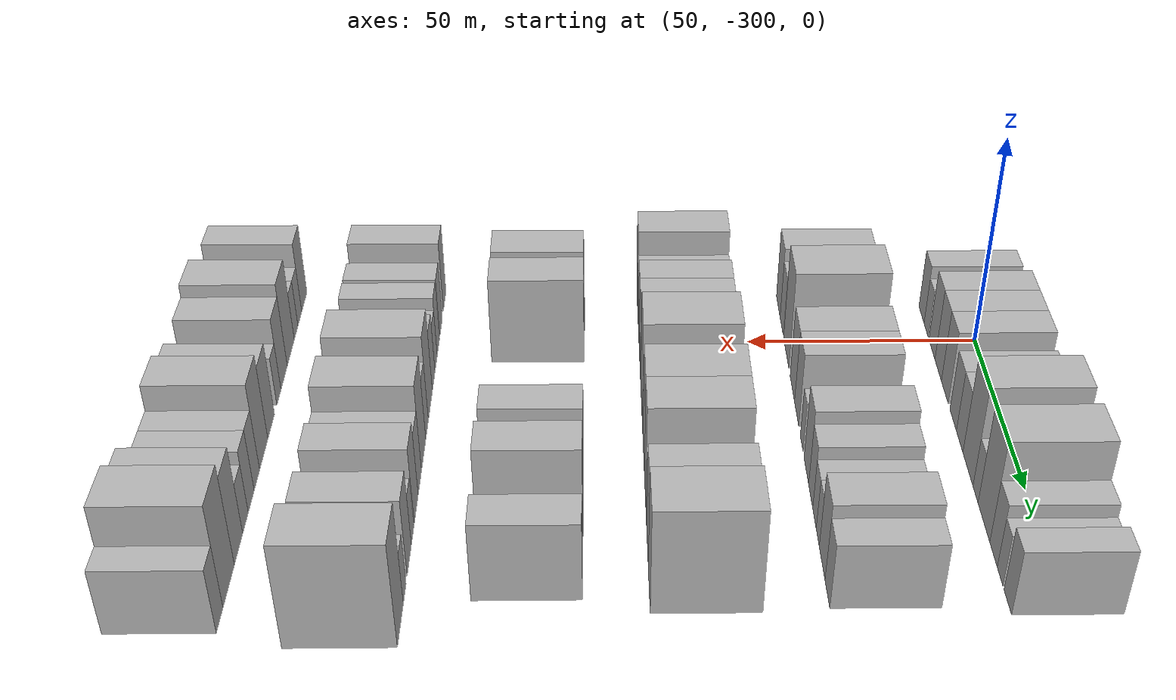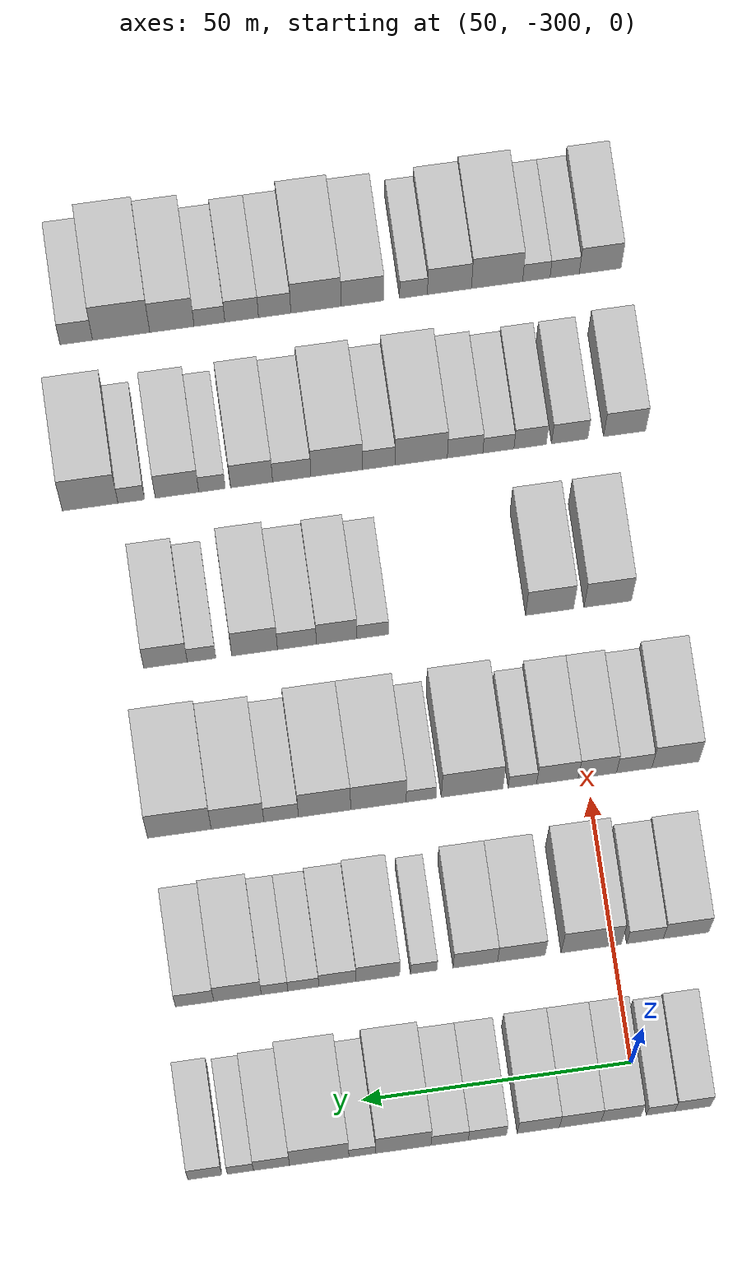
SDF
<sdf version="1.6">
 <world name="default">
  <model name="building_23">
   <static>1</static>
   <pose>50.0000 -310.0398 0 0.000000 0.000000 0.000000</pose>
   <link name="link">
    <pose>0 0 7.50 0 0 0</pose>
    <collision name="collision"><geometry><box><size>20.0000 6.6464 15.0000</size></box></geometry></collision>
    <visual name="visual">
     <cast_shadows>0</cast_shadows>
     <geometry><box><size>20.0000 6.6464 15.0000</size></box></geometry>
     <material>
      <script>
       <uri>model://HANNAS_wall/materials/scripts</uri>
       <uri>model://HANNAS_wall/materials/textures</uri>
       <name>vrc/HANNAS_wall</name>
      </script>
     </material>
    </visual>
   </link>
  </model>
  <model name="building_24">
   <static>1</static>
   <pose>50.0000 -304.0617 0 0.000000 0.000000 0.000000</pose>
   <link name="link">
    <pose>0 0 6.00 0 0 0</pose>
    <collision name="collision"><geometry><box><size>20.0000 5.3097 12.0000</size></box></geometry></collision>
    <visual name="visual">
     <cast_shadows>0</cast_shadows>
     <geometry><box><size>20.0000 5.3097 12.0000</size></box></geometry>
     <material>
      <script>
       <uri>model://HANNAS_wall/materials/scripts</uri>
       <uri>model://HANNAS_wall/materials/textures</uri>
       <name>vrc/HANNAS_wall</name>
      </script>
     </material>
    </visual>
   </link>
  </model>
  <model name="building_25">
   <static>1</static>
   <pose>50.0000 -296.6965 0 0.000000 0.000000 0.000000</pose>
   <link name="link">
    <pose>0 0 9.00 0 0 0</pose>
    <collision name="collision"><geometry><box><size>20.0000 7.4208 18.0000</size></box></geometry></collision>
    <visual name="visual">
     <cast_shadows>0</cast_shadows>
     <geometry><box><size>20.0000 7.4208 18.0000</size></box></geometry>
     <material>
      <script>
       <uri>model://HANNAS_wall/materials/scripts</uri>
       <uri>model://HANNAS_wall/materials/textures</uri>
       <name>vrc/HANNAS_wall</name>
      </script>
     </material>
    </visual>
   </link>
  </model>
  <model name="building_26">
   <static>1</static>
   <pose>50.0000 -289.1113 0 0.000000 0.000000 0.000000</pose>
   <link name="link">
    <pose>0 0 9.00 0 0 0</pose>
    <collision name="collision"><geometry><box><size>20.0000 7.7495 18.0000</size></box></geometry></collision>
    <visual name="visual">
     <cast_shadows>0</cast_shadows>
     <geometry><box><size>20.0000 7.7495 18.0000</size></box></geometry>
     <material>
      <script>
       <uri>model://HANNAS_wall/materials/scripts</uri>
       <uri>model://HANNAS_wall/materials/textures</uri>
       <name>vrc/HANNAS_wall</name>
      </script>
     </material>
    </visual>
   </link>
  </model>
  <model name="building_27">
   <static>1</static>
   <pose>50.0000 -281.3216 0 0.000000 0.000000 0.000000</pose>
   <link name="link">
    <pose>0 0 9.00 0 0 0</pose>
    <collision name="collision"><geometry><box><size>20.0000 7.8299 18.0000</size></box></geometry></collision>
    <visual name="visual">
     <cast_shadows>0</cast_shadows>
     <geometry><box><size>20.0000 7.8299 18.0000</size></box></geometry>
     <material>
      <script>
       <uri>model://HANNAS_wall/materials/scripts</uri>
       <uri>model://HANNAS_wall/materials/textures</uri>
       <name>vrc/HANNAS_wall</name>
      </script>
     </material>
    </visual>
   </link>
  </model>
  <model name="building_28">
   <static>1</static>
   <pose>50.0000 -271.8612 0 0.000000 0.000000 0.000000</pose>
   <link name="link">
    <pose>0 0 7.50 0 0 0</pose>
    <collision name="collision"><geometry><box><size>20.0000 7.0910 15.0000</size></box></geometry></collision>
    <visual name="visual">
     <cast_shadows>0</cast_shadows>
     <geometry><box><size>20.0000 7.0910 15.0000</size></box></geometry>
     <material>
      <script>
       <uri>model://HANNAS_wall/materials/scripts</uri>
       <uri>model://HANNAS_wall/materials/textures</uri>
       <name>vrc/HANNAS_wall</name>
      </script>
     </material>
    </visual>
   </link>
  </model>
  <model name="building_29">
   <static>1</static>
   <pose>50.0000 -264.8515 0 0.000000 0.000000 0.000000</pose>
   <link name="link">
    <pose>0 0 7.50 0 0 0</pose>
    <collision name="collision"><geometry><box><size>20.0000 6.9283 15.0000</size></box></geometry></collision>
    <visual name="visual">
     <cast_shadows>0</cast_shadows>
     <geometry><box><size>20.0000 6.9283 15.0000</size></box></geometry>
     <material>
      <script>
       <uri>model://HANNAS_wall/materials/scripts</uri>
       <uri>model://HANNAS_wall/materials/textures</uri>
       <name>vrc/HANNAS_wall</name>
      </script>
     </material>
    </visual>
   </link>
  </model>
  <model name="building_30">
   <static>1</static>
   <pose>50.0000 -256.2500 0 0.000000 0.000000 0.000000</pose>
   <link name="link">
    <pose>0 0 12.00 0 0 0</pose>
    <collision name="collision"><geometry><box><size>20.0000 10.2747 24.0000</size></box></geometry></collision>
    <visual name="visual">
     <cast_shadows>0</cast_shadows>
     <geometry><box><size>20.0000 10.2747 24.0000</size></box></geometry>
     <material>
      <script>
       <uri>model://HANNAS_wall/materials/scripts</uri>
       <uri>model://HANNAS_wall/materials/textures</uri>
       <name>vrc/HANNAS_wall</name>
      </script>
     </material>
    </visual>
   </link>
  </model>
  <model name="building_31">
   <static>1</static>
   <pose>50.0000 -248.6402 0 0.000000 0.000000 0.000000</pose>
   <link name="link">
    <pose>0 0 6.00 0 0 0</pose>
    <collision name="collision"><geometry><box><size>20.0000 4.9449 12.0000</size></box></geometry></collision>
    <visual name="visual">
     <cast_shadows>0</cast_shadows>
     <geometry><box><size>20.0000 4.9449 12.0000</size></box></geometry>
     <material>
      <script>
       <uri>model://HANNAS_wall/materials/scripts</uri>
       <uri>model://HANNAS_wall/materials/textures</uri>
       <name>vrc/HANNAS_wall</name>
      </script>
     </material>
    </visual>
   </link>
  </model>
  <model name="building_32">
   <static>1</static>
   <pose>50.0000 -240.6708 0 0.000000 0.000000 0.000000</pose>
   <link name="link">
    <pose>0 0 12.00 0 0 0</pose>
    <collision name="collision"><geometry><box><size>20.0000 10.9939 24.0000</size></box></geometry></collision>
    <visual name="visual">
     <cast_shadows>0</cast_shadows>
     <geometry><box><size>20.0000 10.9939 24.0000</size></box></geometry>
     <material>
      <script>
       <uri>model://HANNAS_wall/materials/scripts</uri>
       <uri>model://HANNAS_wall/materials/textures</uri>
       <name>vrc/HANNAS_wall</name>
      </script>
     </material>
    </visual>
   </link>
  </model>
  <model name="building_33">
   <static>1</static>
   <pose>50.0000 -231.8314 0 0.000000 0.000000 0.000000</pose>
   <link name="link">
    <pose>0 0 7.50 0 0 0</pose>
    <collision name="collision"><geometry><box><size>20.0000 6.6849 15.0000</size></box></geometry></collision>
    <visual name="visual">
     <cast_shadows>0</cast_shadows>
     <geometry><box><size>20.0000 6.6849 15.0000</size></box></geometry>
     <material>
      <script>
       <uri>model://HANNAS_wall/materials/scripts</uri>
       <uri>model://HANNAS_wall/materials/textures</uri>
       <name>vrc/HANNAS_wall</name>
      </script>
     </material>
    </visual>
   </link>
  </model>
  <model name="building_34">
   <static>1</static>
   <pose>50.0000 -226.0718 0 0.000000 0.000000 0.000000</pose>
   <link name="link">
    <pose>0 0 6.00 0 0 0</pose>
    <collision name="collision"><geometry><box><size>20.0000 4.8343 12.0000</size></box></geometry></collision>
    <visual name="visual">
     <cast_shadows>0</cast_shadows>
     <geometry><box><size>20.0000 4.8343 12.0000</size></box></geometry>
     <material>
      <script>
       <uri>model://HANNAS_wall/materials/scripts</uri>
       <uri>model://HANNAS_wall/materials/textures</uri>
       <name>vrc/HANNAS_wall</name>
      </script>
     </material>
    </visual>
   </link>
  </model>
  <model name="building_35">
   <static>1</static>
   <pose>50.0000 -219.5047 0 0.000000 0.000000 0.000000</pose>
   <link name="link">
    <pose>0 0 7.50 0 0 0</pose>
    <collision name="collision"><geometry><box><size>20.0000 6.2999 15.0000</size></box></geometry></collision>
    <visual name="visual">
     <cast_shadows>0</cast_shadows>
     <geometry><box><size>20.0000 6.2999 15.0000</size></box></geometry>
     <material>
      <script>
       <uri>model://HANNAS_wall/materials/scripts</uri>
       <uri>model://HANNAS_wall/materials/textures</uri>
       <name>vrc/HANNAS_wall</name>
      </script>
     </material>
    </visual>
   </link>
  </model>
  <model name="building_153">
   <static>1</static>
   <pose>82.0000 -313.6675 0 0.000000 0.000000 0.000000</pose>
   <link name="link">
    <pose>0 0 9.00 0 0 0</pose>
    <collision name="collision"><geometry><box><size>20.0000 8.4877 18.0000</size></box></geometry></collision>
    <visual name="visual">
     <cast_shadows>0</cast_shadows>
     <geometry><box><size>20.0000 8.4877 18.0000</size></box></geometry>
     <material>
      <script>
       <uri>model://HANNAS_wall/materials/scripts</uri>
       <uri>model://HANNAS_wall/materials/textures</uri>
       <name>vrc/HANNAS_wall</name>
      </script>
     </material>
    </visual>
   </link>
  </model>
  <model name="building_154">
   <static>1</static>
   <pose>82.0000 -305.9820 0 0.000000 0.000000 0.000000</pose>
   <link name="link">
    <pose>0 0 7.50 0 0 0</pose>
    <collision name="collision"><geometry><box><size>20.0000 6.8834 15.0000</size></box></geometry></collision>
    <visual name="visual">
     <cast_shadows>0</cast_shadows>
     <geometry><box><size>20.0000 6.8834 15.0000</size></box></geometry>
     <material>
      <script>
       <uri>model://HANNAS_wall/materials/scripts</uri>
       <uri>model://HANNAS_wall/materials/textures</uri>
       <name>vrc/HANNAS_wall</name>
      </script>
     </material>
    </visual>
   </link>
  </model>
  <model name="building_155">
   <static>1</static>
   <pose>82.0000 -295.9151 0 0.000000 0.000000 0.000000</pose>
   <link name="link">
    <pose>0 0 12.00 0 0 0</pose>
    <collision name="collision"><geometry><box><size>20.0000 11.2505 24.0000</size></box></geometry></collision>
    <visual name="visual">
     <cast_shadows>0</cast_shadows>
     <geometry><box><size>20.0000 11.2505 24.0000</size></box></geometry>
     <material>
      <script>
       <uri>model://HANNAS_wall/materials/scripts</uri>
       <uri>model://HANNAS_wall/materials/textures</uri>
       <name>vrc/HANNAS_wall</name>
      </script>
     </material>
    </visual>
   </link>
  </model>
  <model name="building_156">
   <static>1</static>
   <pose>82.0000 -282.8417 0 0.000000 0.000000 0.000000</pose>
   <link name="link">
    <pose>0 0 9.00 0 0 0</pose>
    <collision name="collision"><geometry><box><size>20.0000 8.8963 18.0000</size></box></geometry></collision>
    <visual name="visual">
     <cast_shadows>0</cast_shadows>
     <geometry><box><size>20.0000 8.8963 18.0000</size></box></geometry>
     <material>
      <script>
       <uri>model://HANNAS_wall/materials/scripts</uri>
       <uri>model://HANNAS_wall/materials/textures</uri>
       <name>vrc/HANNAS_wall</name>
      </script>
     </material>
    </visual>
   </link>
  </model>
  <model name="building_157">
   <static>1</static>
   <pose>82.0000 -274.2463 0 0.000000 0.000000 0.000000</pose>
   <link name="link">
    <pose>0 0 9.00 0 0 0</pose>
    <collision name="collision"><geometry><box><size>20.0000 8.2944 18.0000</size></box></geometry></collision>
    <visual name="visual">
     <cast_shadows>0</cast_shadows>
     <geometry><box><size>20.0000 8.2944 18.0000</size></box></geometry>
     <material>
      <script>
       <uri>model://HANNAS_wall/materials/scripts</uri>
       <uri>model://HANNAS_wall/materials/textures</uri>
       <name>vrc/HANNAS_wall</name>
      </script>
     </material>
    </visual>
   </link>
  </model>
  <model name="building_158">
   <static>1</static>
   <pose>82.0000 -264.6137 0 0.000000 0.000000 0.000000</pose>
   <link name="link">
    <pose>0 0 6.00 0 0 0</pose>
    <collision name="collision"><geometry><box><size>20.0000 4.9708 12.0000</size></box></geometry></collision>
    <visual name="visual">
     <cast_shadows>0</cast_shadows>
     <geometry><box><size>20.0000 4.9708 12.0000</size></box></geometry>
     <material>
      <script>
       <uri>model://HANNAS_wall/materials/scripts</uri>
       <uri>model://HANNAS_wall/materials/textures</uri>
       <name>vrc/HANNAS_wall</name>
      </script>
     </material>
    </visual>
   </link>
  </model>
  <model name="building_159">
   <static>1</static>
   <pose>82.0000 -256.0670 0 0.000000 0.000000 0.000000</pose>
   <link name="link">
    <pose>0 0 9.00 0 0 0</pose>
    <collision name="collision"><geometry><box><size>20.0000 8.1225 18.0000</size></box></geometry></collision>
    <visual name="visual">
     <cast_shadows>0</cast_shadows>
     <geometry><box><size>20.0000 8.1225 18.0000</size></box></geometry>
     <material>
      <script>
       <uri>model://HANNAS_wall/materials/scripts</uri>
       <uri>model://HANNAS_wall/materials/textures</uri>
       <name>vrc/HANNAS_wall</name>
      </script>
     </material>
    </visual>
   </link>
  </model>
  <model name="building_160">
   <static>1</static>
   <pose>82.0000 -248.5283 0 0.000000 0.000000 0.000000</pose>
   <link name="link">
    <pose>0 0 7.50 0 0 0</pose>
    <collision name="collision"><geometry><box><size>20.0000 6.9550 15.0000</size></box></geometry></collision>
    <visual name="visual">
     <cast_shadows>0</cast_shadows>
     <geometry><box><size>20.0000 6.9550 15.0000</size></box></geometry>
     <material>
      <script>
       <uri>model://HANNAS_wall/materials/scripts</uri>
       <uri>model://HANNAS_wall/materials/textures</uri>
       <name>vrc/HANNAS_wall</name>
      </script>
     </material>
    </visual>
   </link>
  </model>
  <model name="building_161">
   <static>1</static>
   <pose>82.0000 -242.1600 0 0.000000 0.000000 0.000000</pose>
   <link name="link">
    <pose>0 0 6.00 0 0 0</pose>
    <collision name="collision"><geometry><box><size>20.0000 5.7816 12.0000</size></box></geometry></collision>
    <visual name="visual">
     <cast_shadows>0</cast_shadows>
     <geometry><box><size>20.0000 5.7816 12.0000</size></box></geometry>
     <material>
      <script>
       <uri>model://HANNAS_wall/materials/scripts</uri>
       <uri>model://HANNAS_wall/materials/textures</uri>
       <name>vrc/HANNAS_wall</name>
      </script>
     </material>
    </visual>
   </link>
  </model>
  <model name="building_162">
   <static>1</static>
   <pose>82.0000 -236.7933 0 0.000000 0.000000 0.000000</pose>
   <link name="link">
    <pose>0 0 6.00 0 0 0</pose>
    <collision name="collision"><geometry><box><size>20.0000 4.9519 12.0000</size></box></geometry></collision>
    <visual name="visual">
     <cast_shadows>0</cast_shadows>
     <geometry><box><size>20.0000 4.9519 12.0000</size></box></geometry>
     <material>
      <script>
       <uri>model://HANNAS_wall/materials/scripts</uri>
       <uri>model://HANNAS_wall/materials/textures</uri>
       <name>vrc/HANNAS_wall</name>
      </script>
     </material>
    </visual>
   </link>
  </model>
  <model name="building_163">
   <static>1</static>
   <pose>82.0000 -229.8908 0 0.000000 0.000000 0.000000</pose>
   <link name="link">
    <pose>0 0 9.00 0 0 0</pose>
    <collision name="collision"><geometry><box><size>20.0000 8.8531 18.0000</size></box></geometry></collision>
    <visual name="visual">
     <cast_shadows>0</cast_shadows>
     <geometry><box><size>20.0000 8.8531 18.0000</size></box></geometry>
     <material>
      <script>
       <uri>model://HANNAS_wall/materials/scripts</uri>
       <uri>model://HANNAS_wall/materials/textures</uri>
       <name>vrc/HANNAS_wall</name>
      </script>
     </material>
    </visual>
   </link>
  </model>
  <model name="building_164">
   <static>1</static>
   <pose>82.0000 -221.8907 0 0.000000 0.000000 0.000000</pose>
   <link name="link">
    <pose>0 0 7.50 0 0 0</pose>
    <collision name="collision"><geometry><box><size>20.0000 7.1472 15.0000</size></box></geometry></collision>
    <visual name="visual">
     <cast_shadows>0</cast_shadows>
     <geometry><box><size>20.0000 7.1472 15.0000</size></box></geometry>
     <material>
      <script>
       <uri>model://HANNAS_wall/materials/scripts</uri>
       <uri>model://HANNAS_wall/materials/textures</uri>
       <name>vrc/HANNAS_wall</name>
      </script>
     </material>
    </visual>
   </link>
  </model>
  <model name="building_277">
   <static>1</static>
   <pose>114.0000 -316.5362 0 0.000000 0.000000 0.000000</pose>
   <link name="link">
    <pose>0 0 10.50 0 0 0</pose>
    <collision name="collision"><geometry><box><size>20.0000 8.8751 21.0000</size></box></geometry></collision>
    <visual name="visual">
     <cast_shadows>0</cast_shadows>
     <geometry><box><size>20.0000 8.8751 21.0000</size></box></geometry>
     <material>
      <script>
       <uri>model://HANNAS_wall/materials/scripts</uri>
       <uri>model://HANNAS_wall/materials/textures</uri>
       <name>vrc/HANNAS_wall</name>
      </script>
     </material>
    </visual>
   </link>
  </model>
  <model name="building_278">
   <static>1</static>
   <pose>114.0000 -308.7785 0 0.000000 0.000000 0.000000</pose>
   <link name="link">
    <pose>0 0 7.50 0 0 0</pose>
    <collision name="collision"><geometry><box><size>20.0000 6.6402 15.0000</size></box></geometry></collision>
    <visual name="visual">
     <cast_shadows>0</cast_shadows>
     <geometry><box><size>20.0000 6.6402 15.0000</size></box></geometry>
     <material>
      <script>
       <uri>model://HANNAS_wall/materials/scripts</uri>
       <uri>model://HANNAS_wall/materials/textures</uri>
       <name>vrc/HANNAS_wall</name>
      </script>
     </material>
    </visual>
   </link>
  </model>
  <model name="building_279">
   <static>1</static>
   <pose>114.0000 -301.8537 0 0.000000 0.000000 0.000000</pose>
   <link name="link">
    <pose>0 0 9.00 0 0 0</pose>
    <collision name="collision"><geometry><box><size>20.0000 7.2094 18.0000</size></box></geometry></collision>
    <visual name="visual">
     <cast_shadows>0</cast_shadows>
     <geometry><box><size>20.0000 7.2094 18.0000</size></box></geometry>
     <material>
      <script>
       <uri>model://HANNAS_wall/materials/scripts</uri>
       <uri>model://HANNAS_wall/materials/textures</uri>
       <name>vrc/HANNAS_wall</name>
      </script>
     </material>
    </visual>
   </link>
  </model>
  <model name="building_280">
   <static>1</static>
   <pose>114.0000 -294.3262 0 0.000000 0.000000 0.000000</pose>
   <link name="link">
    <pose>0 0 9.00 0 0 0</pose>
    <collision name="collision"><geometry><box><size>20.0000 7.8455 18.0000</size></box></geometry></collision>
    <visual name="visual">
     <cast_shadows>0</cast_shadows>
     <geometry><box><size>20.0000 7.8455 18.0000</size></box></geometry>
     <material>
      <script>
       <uri>model://HANNAS_wall/materials/scripts</uri>
       <uri>model://HANNAS_wall/materials/textures</uri>
       <name>vrc/HANNAS_wall</name>
      </script>
     </material>
    </visual>
   </link>
  </model>
  <model name="building_281">
   <static>1</static>
   <pose>114.0000 -287.7288 0 0.000000 0.000000 0.000000</pose>
   <link name="link">
    <pose>0 0 6.00 0 0 0</pose>
    <collision name="collision"><geometry><box><size>20.0000 5.3493 12.0000</size></box></geometry></collision>
    <visual name="visual">
     <cast_shadows>0</cast_shadows>
     <geometry><box><size>20.0000 5.3493 12.0000</size></box></geometry>
     <material>
      <script>
       <uri>model://HANNAS_wall/materials/scripts</uri>
       <uri>model://HANNAS_wall/materials/textures</uri>
       <name>vrc/HANNAS_wall</name>
      </script>
     </material>
    </visual>
   </link>
  </model>
  <model name="building_282">
   <static>1</static>
   <pose>114.0000 -278.2724 0 0.000000 0.000000 0.000000</pose>
   <link name="link">
    <pose>0 0 12.00 0 0 0</pose>
    <collision name="collision"><geometry><box><size>20.0000 11.5635 24.0000</size></box></geometry></collision>
    <visual name="visual">
     <cast_shadows>0</cast_shadows>
     <geometry><box><size>20.0000 11.5635 24.0000</size></box></geometry>
     <material>
      <script>
       <uri>model://HANNAS_wall/materials/scripts</uri>
       <uri>model://HANNAS_wall/materials/textures</uri>
       <name>vrc/HANNAS_wall</name>
      </script>
     </material>
    </visual>
   </link>
  </model>
  <model name="building_283">
   <static>1</static>
   <pose>114.0000 -268.6815 0 0.000000 0.000000 0.000000</pose>
   <link name="link">
    <pose>0 0 6.00 0 0 0</pose>
    <collision name="collision"><geometry><box><size>20.0000 5.6183 12.0000</size></box></geometry></collision>
    <visual name="visual">
     <cast_shadows>0</cast_shadows>
     <geometry><box><size>20.0000 5.6183 12.0000</size></box></geometry>
     <material>
      <script>
       <uri>model://HANNAS_wall/materials/scripts</uri>
       <uri>model://HANNAS_wall/materials/textures</uri>
       <name>vrc/HANNAS_wall</name>
      </script>
     </material>
    </visual>
   </link>
  </model>
  <model name="building_284">
   <static>1</static>
   <pose>114.0000 -260.6667 0 0.000000 0.000000 0.000000</pose>
   <link name="link">
    <pose>0 0 12.00 0 0 0</pose>
    <collision name="collision"><geometry><box><size>20.0000 10.4114 24.0000</size></box></geometry></collision>
    <visual name="visual">
     <cast_shadows>0</cast_shadows>
     <geometry><box><size>20.0000 10.4114 24.0000</size></box></geometry>
     <material>
      <script>
       <uri>model://HANNAS_wall/materials/scripts</uri>
       <uri>model://HANNAS_wall/materials/textures</uri>
       <name>vrc/HANNAS_wall</name>
      </script>
     </material>
    </visual>
   </link>
  </model>
  <model name="building_285">
   <static>1</static>
   <pose>114.0000 -250.5567 0 0.000000 0.000000 0.000000</pose>
   <link name="link">
    <pose>0 0 12.00 0 0 0</pose>
    <collision name="collision"><geometry><box><size>20.0000 9.8084 24.0000</size></box></geometry></collision>
    <visual name="visual">
     <cast_shadows>0</cast_shadows>
     <geometry><box><size>20.0000 9.8084 24.0000</size></box></geometry>
     <material>
      <script>
       <uri>model://HANNAS_wall/materials/scripts</uri>
       <uri>model://HANNAS_wall/materials/textures</uri>
       <name>vrc/HANNAS_wall</name>
      </script>
     </material>
    </visual>
   </link>
  </model>
  <model name="building_286">
   <static>1</static>
   <pose>114.0000 -242.4136 0 0.000000 0.000000 0.000000</pose>
   <link name="link">
    <pose>0 0 7.50 0 0 0</pose>
    <collision name="collision"><geometry><box><size>20.0000 6.4779 15.0000</size></box></geometry></collision>
    <visual name="visual">
     <cast_shadows>0</cast_shadows>
     <geometry><box><size>20.0000 6.4779 15.0000</size></box></geometry>
     <material>
      <script>
       <uri>model://HANNAS_wall/materials/scripts</uri>
       <uri>model://HANNAS_wall/materials/textures</uri>
       <name>vrc/HANNAS_wall</name>
      </script>
     </material>
    </visual>
   </link>
  </model>
  <model name="building_287">
   <static>1</static>
   <pose>114.0000 -234.2398 0 0.000000 0.000000 0.000000</pose>
   <link name="link">
    <pose>0 0 10.50 0 0 0</pose>
    <collision name="collision"><geometry><box><size>20.0000 9.8696 21.0000</size></box></geometry></collision>
    <visual name="visual">
     <cast_shadows>0</cast_shadows>
     <geometry><box><size>20.0000 9.8696 21.0000</size></box></geometry>
     <material>
      <script>
       <uri>model://HANNAS_wall/materials/scripts</uri>
       <uri>model://HANNAS_wall/materials/textures</uri>
       <name>vrc/HANNAS_wall</name>
      </script>
     </material>
    </visual>
   </link>
  </model>
  <model name="building_288">
   <static>1</static>
   <pose>114.0000 -223.3568 0 0.000000 0.000000 0.000000</pose>
   <link name="link">
    <pose>0 0 12.00 0 0 0</pose>
    <collision name="collision"><geometry><box><size>20.0000 11.8964 24.0000</size></box></geometry></collision>
    <visual name="visual">
     <cast_shadows>0</cast_shadows>
     <geometry><box><size>20.0000 11.8964 24.0000</size></box></geometry>
     <material>
      <script>
       <uri>model://HANNAS_wall/materials/scripts</uri>
       <uri>model://HANNAS_wall/materials/textures</uri>
       <name>vrc/HANNAS_wall</name>
      </script>
     </material>
    </visual>
   </link>
  </model>
  <model name="building_396">
   <static>1</static>
   <pose>146.0000 -308.5719 0 0.000000 0.000000 0.000000</pose>
   <link name="link">
    <pose>0 0 10.50 0 0 0</pose>
    <collision name="collision"><geometry><box><size>20.0000 8.9583 21.0000</size></box></geometry></collision>
    <visual name="visual">
     <cast_shadows>0</cast_shadows>
     <geometry><box><size>20.0000 8.9583 21.0000</size></box></geometry>
     <material>
      <script>
       <uri>model://HANNAS_wall/materials/scripts</uri>
       <uri>model://HANNAS_wall/materials/textures</uri>
       <name>vrc/HANNAS_wall</name>
      </script>
     </material>
    </visual>
   </link>
  </model>
  <model name="building_397">
   <static>1</static>
   <pose>146.0000 -297.5527 0 0.000000 0.000000 0.000000</pose>
   <link name="link">
    <pose>0 0 10.50 0 0 0</pose>
    <collision name="collision"><geometry><box><size>20.0000 9.0800 21.0000</size></box></geometry></collision>
    <visual name="visual">
     <cast_shadows>0</cast_shadows>
     <geometry><box><size>20.0000 9.0800 21.0000</size></box></geometry>
     <material>
      <script>
       <uri>model://HANNAS_wall/materials/scripts</uri>
       <uri>model://HANNAS_wall/materials/textures</uri>
       <name>vrc/HANNAS_wall</name>
      </script>
     </material>
    </visual>
   </link>
  </model>
  <model name="building_398">
   <static>1</static>
   <pose>146.0000 -264.1134 0 0.000000 0.000000 0.000000</pose>
   <link name="link">
    <pose>0 0 6.00 0 0 0</pose>
    <collision name="collision"><geometry><box><size>20.0000 5.9329 12.0000</size></box></geometry></collision>
    <visual name="visual">
     <cast_shadows>0</cast_shadows>
     <geometry><box><size>20.0000 5.9329 12.0000</size></box></geometry>
     <material>
      <script>
       <uri>model://HANNAS_wall/materials/scripts</uri>
       <uri>model://HANNAS_wall/materials/textures</uri>
       <name>vrc/HANNAS_wall</name>
      </script>
     </material>
    </visual>
   </link>
  </model>
  <model name="building_399">
   <static>1</static>
   <pose>146.0000 -257.3158 0 0.000000 0.000000 0.000000</pose>
   <link name="link">
    <pose>0 0 9.00 0 0 0</pose>
    <collision name="collision"><geometry><box><size>20.0000 7.6623 18.0000</size></box></geometry></collision>
    <visual name="visual">
     <cast_shadows>0</cast_shadows>
     <geometry><box><size>20.0000 7.6623 18.0000</size></box></geometry>
     <material>
      <script>
       <uri>model://HANNAS_wall/materials/scripts</uri>
       <uri>model://HANNAS_wall/materials/textures</uri>
       <name>vrc/HANNAS_wall</name>
      </script>
     </material>
    </visual>
   </link>
  </model>
  <model name="building_400">
   <static>1</static>
   <pose>146.0000 -249.8062 0 0.000000 0.000000 0.000000</pose>
   <link name="link">
    <pose>0 0 7.50 0 0 0</pose>
    <collision name="collision"><geometry><box><size>20.0000 7.3569 15.0000</size></box></geometry></collision>
    <visual name="visual">
     <cast_shadows>0</cast_shadows>
     <geometry><box><size>20.0000 7.3569 15.0000</size></box></geometry>
     <material>
      <script>
       <uri>model://HANNAS_wall/materials/scripts</uri>
       <uri>model://HANNAS_wall/materials/textures</uri>
       <name>vrc/HANNAS_wall</name>
      </script>
     </material>
    </visual>
   </link>
  </model>
  <model name="building_401">
   <static>1</static>
   <pose>146.0000 -241.8168 0 0.000000 0.000000 0.000000</pose>
   <link name="link">
    <pose>0 0 10.50 0 0 0</pose>
    <collision name="collision"><geometry><box><size>20.0000 8.6219 21.0000</size></box></geometry></collision>
    <visual name="visual">
     <cast_shadows>0</cast_shadows>
     <geometry><box><size>20.0000 8.6219 21.0000</size></box></geometry>
     <material>
      <script>
       <uri>model://HANNAS_wall/materials/scripts</uri>
       <uri>model://HANNAS_wall/materials/textures</uri>
       <name>vrc/HANNAS_wall</name>
      </script>
     </material>
    </visual>
   </link>
  </model>
  <model name="building_402">
   <static>1</static>
   <pose>146.0000 -231.8122 0 0.000000 0.000000 0.000000</pose>
   <link name="link">
    <pose>0 0 6.00 0 0 0</pose>
    <collision name="collision"><geometry><box><size>20.0000 5.3873 12.0000</size></box></geometry></collision>
    <visual name="visual">
     <cast_shadows>0</cast_shadows>
     <geometry><box><size>20.0000 5.3873 12.0000</size></box></geometry>
     <material>
      <script>
       <uri>model://HANNAS_wall/materials/scripts</uri>
       <uri>model://HANNAS_wall/materials/textures</uri>
       <name>vrc/HANNAS_wall</name>
      </script>
     </material>
    </visual>
   </link>
  </model>
  <model name="building_403">
   <static>1</static>
   <pose>146.0000 -225.0114 0 0.000000 0.000000 0.000000</pose>
   <link name="link">
    <pose>0 0 9.00 0 0 0</pose>
    <collision name="collision"><geometry><box><size>20.0000 8.2143 18.0000</size></box></geometry></collision>
    <visual name="visual">
     <cast_shadows>0</cast_shadows>
     <geometry><box><size>20.0000 8.2143 18.0000</size></box></geometry>
     <material>
      <script>
       <uri>model://HANNAS_wall/materials/scripts</uri>
       <uri>model://HANNAS_wall/materials/textures</uri>
       <name>vrc/HANNAS_wall</name>
      </script>
     </material>
    </visual>
   </link>
  </model>
  <model name="building_516">
   <static>1</static>
   <pose>178.0000 -316.5632 0 0.000000 0.000000 0.000000</pose>
   <link name="link">
    <pose>0 0 9.00 0 0 0</pose>
    <collision name="collision"><geometry><box><size>20.0000 8.0112 18.0000</size></box></geometry></collision>
    <visual name="visual">
     <cast_shadows>0</cast_shadows>
     <geometry><box><size>20.0000 8.0112 18.0000</size></box></geometry>
     <material>
      <script>
       <uri>model://HANNAS_wall/materials/scripts</uri>
       <uri>model://HANNAS_wall/materials/textures</uri>
       <name>vrc/HANNAS_wall</name>
      </script>
     </material>
    </visual>
   </link>
  </model>
  <model name="building_517">
   <static>1</static>
   <pose>178.0000 -306.1087 0 0.000000 0.000000 0.000000</pose>
   <link name="link">
    <pose>0 0 7.50 0 0 0</pose>
    <collision name="collision"><geometry><box><size>20.0000 6.8980 15.0000</size></box></geometry></collision>
    <visual name="visual">
     <cast_shadows>0</cast_shadows>
     <geometry><box><size>20.0000 6.8980 15.0000</size></box></geometry>
     <material>
      <script>
       <uri>model://HANNAS_wall/materials/scripts</uri>
       <uri>model://HANNAS_wall/materials/textures</uri>
       <name>vrc/HANNAS_wall</name>
      </script>
     </material>
    </visual>
   </link>
  </model>
  <model name="building_518">
   <static>1</static>
   <pose>178.0000 -298.5788 0 0.000000 0.000000 0.000000</pose>
   <link name="link">
    <pose>0 0 7.50 0 0 0</pose>
    <collision name="collision"><geometry><box><size>20.0000 6.1617 15.0000</size></box></geometry></collision>
    <visual name="visual">
     <cast_shadows>0</cast_shadows>
     <geometry><box><size>20.0000 6.1617 15.0000</size></box></geometry>
     <material>
      <script>
       <uri>model://HANNAS_wall/materials/scripts</uri>
       <uri>model://HANNAS_wall/materials/textures</uri>
       <name>vrc/HANNAS_wall</name>
      </script>
     </material>
    </visual>
   </link>
  </model>
  <model name="building_519">
   <static>1</static>
   <pose>178.0000 -292.5360 0 0.000000 0.000000 0.000000</pose>
   <link name="link">
    <pose>0 0 6.00 0 0 0</pose>
    <collision name="collision"><geometry><box><size>20.0000 5.9240 12.0000</size></box></geometry></collision>
    <visual name="visual">
     <cast_shadows>0</cast_shadows>
     <geometry><box><size>20.0000 5.9240 12.0000</size></box></geometry>
     <material>
      <script>
       <uri>model://HANNAS_wall/materials/scripts</uri>
       <uri>model://HANNAS_wall/materials/textures</uri>
       <name>vrc/HANNAS_wall</name>
      </script>
     </material>
    </visual>
   </link>
  </model>
  <model name="building_520">
   <static>1</static>
   <pose>178.0000 -286.1888 0 0.000000 0.000000 0.000000</pose>
   <link name="link">
    <pose>0 0 7.50 0 0 0</pose>
    <collision name="collision"><geometry><box><size>20.0000 6.7704 15.0000</size></box></geometry></collision>
    <visual name="visual">
     <cast_shadows>0</cast_shadows>
     <geometry><box><size>20.0000 6.7704 15.0000</size></box></geometry>
     <material>
      <script>
       <uri>model://HANNAS_wall/materials/scripts</uri>
       <uri>model://HANNAS_wall/materials/textures</uri>
       <name>vrc/HANNAS_wall</name>
      </script>
     </material>
    </visual>
   </link>
  </model>
  <model name="building_521">
   <static>1</static>
   <pose>178.0000 -277.8372 0 0.000000 0.000000 0.000000</pose>
   <link name="link">
    <pose>0 0 10.50 0 0 0</pose>
    <collision name="collision"><geometry><box><size>20.0000 9.9327 21.0000</size></box></geometry></collision>
    <visual name="visual">
     <cast_shadows>0</cast_shadows>
     <geometry><box><size>20.0000 9.9327 21.0000</size></box></geometry>
     <material>
      <script>
       <uri>model://HANNAS_wall/materials/scripts</uri>
       <uri>model://HANNAS_wall/materials/textures</uri>
       <name>vrc/HANNAS_wall</name>
      </script>
     </material>
    </visual>
   </link>
  </model>
  <model name="building_522">
   <static>1</static>
   <pose>178.0000 -269.7893 0 0.000000 0.000000 0.000000</pose>
   <link name="link">
    <pose>0 0 7.50 0 0 0</pose>
    <collision name="collision"><geometry><box><size>20.0000 6.1631 15.0000</size></box></geometry></collision>
    <visual name="visual">
     <cast_shadows>0</cast_shadows>
     <geometry><box><size>20.0000 6.1631 15.0000</size></box></geometry>
     <material>
      <script>
       <uri>model://HANNAS_wall/materials/scripts</uri>
       <uri>model://HANNAS_wall/materials/textures</uri>
       <name>vrc/HANNAS_wall</name>
      </script>
     </material>
    </visual>
   </link>
  </model>
  <model name="building_523">
   <static>1</static>
   <pose>178.0000 -261.7959 0 0.000000 0.000000 0.000000</pose>
   <link name="link">
    <pose>0 0 10.50 0 0 0</pose>
    <collision name="collision"><geometry><box><size>20.0000 9.8237 21.0000</size></box></geometry></collision>
    <visual name="visual">
     <cast_shadows>0</cast_shadows>
     <geometry><box><size>20.0000 9.8237 21.0000</size></box></geometry>
     <material>
      <script>
       <uri>model://HANNAS_wall/materials/scripts</uri>
       <uri>model://HANNAS_wall/materials/textures</uri>
       <name>vrc/HANNAS_wall</name>
      </script>
     </material>
    </visual>
   </link>
  </model>
  <model name="building_524">
   <static>1</static>
   <pose>178.0000 -253.2418 0 0.000000 0.000000 0.000000</pose>
   <link name="link">
    <pose>0 0 7.50 0 0 0</pose>
    <collision name="collision"><geometry><box><size>20.0000 7.2844 15.0000</size></box></geometry></collision>
    <visual name="visual">
     <cast_shadows>0</cast_shadows>
     <geometry><box><size>20.0000 7.2844 15.0000</size></box></geometry>
     <material>
      <script>
       <uri>model://HANNAS_wall/materials/scripts</uri>
       <uri>model://HANNAS_wall/materials/textures</uri>
       <name>vrc/HANNAS_wall</name>
      </script>
     </material>
    </visual>
   </link>
  </model>
  <model name="building_525">
   <static>1</static>
   <pose>178.0000 -245.6120 0 0.000000 0.000000 0.000000</pose>
   <link name="link">
    <pose>0 0 9.00 0 0 0</pose>
    <collision name="collision"><geometry><box><size>20.0000 7.9752 18.0000</size></box></geometry></collision>
    <visual name="visual">
     <cast_shadows>0</cast_shadows>
     <geometry><box><size>20.0000 7.9752 18.0000</size></box></geometry>
     <material>
      <script>
       <uri>model://HANNAS_wall/materials/scripts</uri>
       <uri>model://HANNAS_wall/materials/textures</uri>
       <name>vrc/HANNAS_wall</name>
      </script>
     </material>
    </visual>
   </link>
  </model>
  <model name="building_526">
   <static>1</static>
   <pose>178.0000 -238.1069 0 0.000000 0.000000 0.000000</pose>
   <link name="link">
    <pose>0 0 6.00 0 0 0</pose>
    <collision name="collision"><geometry><box><size>20.0000 5.0350 12.0000</size></box></geometry></collision>
    <visual name="visual">
     <cast_shadows>0</cast_shadows>
     <geometry><box><size>20.0000 5.0350 12.0000</size></box></geometry>
     <material>
      <script>
       <uri>model://HANNAS_wall/materials/scripts</uri>
       <uri>model://HANNAS_wall/materials/textures</uri>
       <name>vrc/HANNAS_wall</name>
      </script>
     </material>
    </visual>
   </link>
  </model>
  <model name="building_527">
   <static>1</static>
   <pose>178.0000 -231.4608 0 0.000000 0.000000 0.000000</pose>
   <link name="link">
    <pose>0 0 9.00 0 0 0</pose>
    <collision name="collision"><geometry><box><size>20.0000 8.2572 18.0000</size></box></geometry></collision>
    <visual name="visual">
     <cast_shadows>0</cast_shadows>
     <geometry><box><size>20.0000 8.2572 18.0000</size></box></geometry>
     <material>
      <script>
       <uri>model://HANNAS_wall/materials/scripts</uri>
       <uri>model://HANNAS_wall/materials/textures</uri>
       <name>vrc/HANNAS_wall</name>
      </script>
     </material>
    </visual>
   </link>
  </model>
  <model name="building_528">
   <static>1</static>
   <pose>178.0000 -222.7926 0 0.000000 0.000000 0.000000</pose>
   <link name="link">
    <pose>0 0 6.00 0 0 0</pose>
    <collision name="collision"><geometry><box><size>20.0000 5.0792 12.0000</size></box></geometry></collision>
    <visual name="visual">
     <cast_shadows>0</cast_shadows>
     <geometry><box><size>20.0000 5.0792 12.0000</size></box></geometry>
     <material>
      <script>
       <uri>model://HANNAS_wall/materials/scripts</uri>
       <uri>model://HANNAS_wall/materials/textures</uri>
       <name>vrc/HANNAS_wall</name>
      </script>
     </material>
    </visual>
   </link>
  </model>
  <model name="building_529">
   <static>1</static>
   <pose>178.0000 -214.9827 0 0.000000 0.000000 0.000000</pose>
   <link name="link">
    <pose>0 0 12.00 0 0 0</pose>
    <collision name="collision"><geometry><box><size>20.0000 10.5406 24.0000</size></box></geometry></collision>
    <visual name="visual">
     <cast_shadows>0</cast_shadows>
     <geometry><box><size>20.0000 10.5406 24.0000</size></box></geometry>
     <material>
      <script>
       <uri>model://HANNAS_wall/materials/scripts</uri>
       <uri>model://HANNAS_wall/materials/textures</uri>
       <name>vrc/HANNAS_wall</name>
      </script>
     </material>
    </visual>
   </link>
  </model>
  <model name="building_636">
   <static>1</static>
   <pose>210.0000 -316.6764 0 0.000000 0.000000 0.000000</pose>
   <link name="link">
    <pose>0 0 9.00 0 0 0</pose>
    <collision name="collision"><geometry><box><size>20.0000 7.9951 18.0000</size></box></geometry></collision>
    <visual name="visual">
     <cast_shadows>0</cast_shadows>
     <geometry><box><size>20.0000 7.9951 18.0000</size></box></geometry>
     <material>
      <script>
       <uri>model://HANNAS_wall/materials/scripts</uri>
       <uri>model://HANNAS_wall/materials/textures</uri>
       <name>vrc/HANNAS_wall</name>
      </script>
     </material>
    </visual>
   </link>
  </model>
  <model name="building_637">
   <static>1</static>
   <pose>210.0000 -309.8787 0 0.000000 0.000000 0.000000</pose>
   <link name="link">
    <pose>0 0 6.00 0 0 0</pose>
    <collision name="collision"><geometry><box><size>20.0000 5.6003 12.0000</size></box></geometry></collision>
    <visual name="visual">
     <cast_shadows>0</cast_shadows>
     <geometry><box><size>20.0000 5.6003 12.0000</size></box></geometry>
     <material>
      <script>
       <uri>model://HANNAS_wall/materials/scripts</uri>
       <uri>model://HANNAS_wall/materials/textures</uri>
       <name>vrc/HANNAS_wall</name>
      </script>
     </material>
    </visual>
   </link>
  </model>
  <model name="building_638">
   <static>1</static>
   <pose>210.0000 -304.4491 0 0.000000 0.000000 0.000000</pose>
   <link name="link">
    <pose>0 0 6.00 0 0 0</pose>
    <collision name="collision"><geometry><box><size>20.0000 5.2590 12.0000</size></box></geometry></collision>
    <visual name="visual">
     <cast_shadows>0</cast_shadows>
     <geometry><box><size>20.0000 5.2590 12.0000</size></box></geometry>
     <material>
      <script>
       <uri>model://HANNAS_wall/materials/scripts</uri>
       <uri>model://HANNAS_wall/materials/textures</uri>
       <name>vrc/HANNAS_wall</name>
      </script>
     </material>
    </visual>
   </link>
  </model>
  <model name="building_639">
   <static>1</static>
   <pose>210.0000 -296.9221 0 0.000000 0.000000 0.000000</pose>
   <link name="link">
    <pose>0 0 10.50 0 0 0</pose>
    <collision name="collision"><geometry><box><size>20.0000 9.7950 21.0000</size></box></geometry></collision>
    <visual name="visual">
     <cast_shadows>0</cast_shadows>
     <geometry><box><size>20.0000 9.7950 21.0000</size></box></geometry>
     <material>
      <script>
       <uri>model://HANNAS_wall/materials/scripts</uri>
       <uri>model://HANNAS_wall/materials/textures</uri>
       <name>vrc/HANNAS_wall</name>
      </script>
     </material>
    </visual>
   </link>
  </model>
  <model name="building_640">
   <static>1</static>
   <pose>210.0000 -287.8104 0 0.000000 0.000000 0.000000</pose>
   <link name="link">
    <pose>0 0 9.00 0 0 0</pose>
    <collision name="collision"><geometry><box><size>20.0000 8.4284 18.0000</size></box></geometry></collision>
    <visual name="visual">
     <cast_shadows>0</cast_shadows>
     <geometry><box><size>20.0000 8.4284 18.0000</size></box></geometry>
     <material>
      <script>
       <uri>model://HANNAS_wall/materials/scripts</uri>
       <uri>model://HANNAS_wall/materials/textures</uri>
       <name>vrc/HANNAS_wall</name>
      </script>
     </material>
    </visual>
   </link>
  </model>
  <model name="building_641">
   <static>1</static>
   <pose>210.0000 -280.9376 0 0.000000 0.000000 0.000000</pose>
   <link name="link">
    <pose>0 0 6.00 0 0 0</pose>
    <collision name="collision"><geometry><box><size>20.0000 5.3172 12.0000</size></box></geometry></collision>
    <visual name="visual">
     <cast_shadows>0</cast_shadows>
     <geometry><box><size>20.0000 5.3172 12.0000</size></box></geometry>
     <material>
      <script>
       <uri>model://HANNAS_wall/materials/scripts</uri>
       <uri>model://HANNAS_wall/materials/textures</uri>
       <name>vrc/HANNAS_wall</name>
      </script>
     </material>
    </visual>
   </link>
  </model>
  <model name="building_642">
   <static>1</static>
   <pose>210.0000 -271.1835 0 0.000000 0.000000 0.000000</pose>
   <link name="link">
    <pose>0 0 9.00 0 0 0</pose>
    <collision name="collision"><geometry><box><size>20.0000 8.1909 18.0000</size></box></geometry></collision>
    <visual name="visual">
     <cast_shadows>0</cast_shadows>
     <geometry><box><size>20.0000 8.1909 18.0000</size></box></geometry>
     <material>
      <script>
       <uri>model://HANNAS_wall/materials/scripts</uri>
       <uri>model://HANNAS_wall/materials/textures</uri>
       <name>vrc/HANNAS_wall</name>
      </script>
     </material>
    </visual>
   </link>
  </model>
  <model name="building_643">
   <static>1</static>
   <pose>210.0000 -262.2837 0 0.000000 0.000000 0.000000</pose>
   <link name="link">
    <pose>0 0 10.50 0 0 0</pose>
    <collision name="collision"><geometry><box><size>20.0000 9.6087 21.0000</size></box></geometry></collision>
    <visual name="visual">
     <cast_shadows>0</cast_shadows>
     <geometry><box><size>20.0000 9.6087 21.0000</size></box></geometry>
     <material>
      <script>
       <uri>model://HANNAS_wall/materials/scripts</uri>
       <uri>model://HANNAS_wall/materials/textures</uri>
       <name>vrc/HANNAS_wall</name>
      </script>
     </material>
    </visual>
   </link>
  </model>
  <model name="building_644">
   <static>1</static>
   <pose>210.0000 -254.3933 0 0.000000 0.000000 0.000000</pose>
   <link name="link">
    <pose>0 0 7.50 0 0 0</pose>
    <collision name="collision"><geometry><box><size>20.0000 6.1722 15.0000</size></box></geometry></collision>
    <visual name="visual">
     <cast_shadows>0</cast_shadows>
     <geometry><box><size>20.0000 6.1722 15.0000</size></box></geometry>
     <material>
      <script>
       <uri>model://HANNAS_wall/materials/scripts</uri>
       <uri>model://HANNAS_wall/materials/textures</uri>
       <name>vrc/HANNAS_wall</name>
      </script>
     </material>
    </visual>
   </link>
  </model>
  <model name="building_645">
   <static>1</static>
   <pose>210.0000 -248.0943 0 0.000000 0.000000 0.000000</pose>
   <link name="link">
    <pose>0 0 7.50 0 0 0</pose>
    <collision name="collision"><geometry><box><size>20.0000 6.4259 15.0000</size></box></geometry></collision>
    <visual name="visual">
     <cast_shadows>0</cast_shadows>
     <geometry><box><size>20.0000 6.4259 15.0000</size></box></geometry>
     <material>
      <script>
       <uri>model://HANNAS_wall/materials/scripts</uri>
       <uri>model://HANNAS_wall/materials/textures</uri>
       <name>vrc/HANNAS_wall</name>
      </script>
     </material>
    </visual>
   </link>
  </model>
  <model name="building_646">
   <static>1</static>
   <pose>210.0000 -241.9474 0 0.000000 0.000000 0.000000</pose>
   <link name="link">
    <pose>0 0 6.00 0 0 0</pose>
    <collision name="collision"><geometry><box><size>20.0000 5.8678 12.0000</size></box></geometry></collision>
    <visual name="visual">
     <cast_shadows>0</cast_shadows>
     <geometry><box><size>20.0000 5.8678 12.0000</size></box></geometry>
     <material>
      <script>
       <uri>model://HANNAS_wall/materials/scripts</uri>
       <uri>model://HANNAS_wall/materials/textures</uri>
       <name>vrc/HANNAS_wall</name>
      </script>
     </material>
    </visual>
   </link>
  </model>
  <model name="building_647">
   <static>1</static>
   <pose>210.0000 -234.7793 0 0.000000 0.000000 0.000000</pose>
   <link name="link">
    <pose>0 0 10.50 0 0 0</pose>
    <collision name="collision"><geometry><box><size>20.0000 8.4683 21.0000</size></box></geometry></collision>
    <visual name="visual">
     <cast_shadows>0</cast_shadows>
     <geometry><box><size>20.0000 8.4683 21.0000</size></box></geometry>
     <material>
      <script>
       <uri>model://HANNAS_wall/materials/scripts</uri>
       <uri>model://HANNAS_wall/materials/textures</uri>
       <name>vrc/HANNAS_wall</name>
      </script>
     </material>
    </visual>
   </link>
  </model>
  <model name="building_648">
   <static>1</static>
   <pose>210.0000 -225.0888 0 0.000000 0.000000 0.000000</pose>
   <link name="link">
    <pose>0 0 12.00 0 0 0</pose>
    <collision name="collision"><geometry><box><size>20.0000 10.9127 24.0000</size></box></geometry></collision>
    <visual name="visual">
     <cast_shadows>0</cast_shadows>
     <geometry><box><size>20.0000 10.9127 24.0000</size></box></geometry>
     <material>
      <script>
       <uri>model://HANNAS_wall/materials/scripts</uri>
       <uri>model://HANNAS_wall/materials/textures</uri>
       <name>vrc/HANNAS_wall</name>
      </script>
     </material>
    </visual>
   </link>
  </model>
  <model name="building_649">
   <static>1</static>
   <pose>210.0000 -216.5285 0 0.000000 0.000000 0.000000</pose>
   <link name="link">
    <pose>0 0 7.50 0 0 0</pose>
    <collision name="collision"><geometry><box><size>20.0000 6.2080 15.0000</size></box></geometry></collision>
    <visual name="visual">
     <cast_shadows>0</cast_shadows>
     <geometry><box><size>20.0000 6.2080 15.0000</size></box></geometry>
     <material>
      <script>
       <uri>model://HANNAS_wall/materials/scripts</uri>
       <uri>model://HANNAS_wall/materials/textures</uri>
       <name>vrc/HANNAS_wall</name>
      </script>
     </material>
    </visual>
   </link>
  </model>
 </world>
</sdf>
